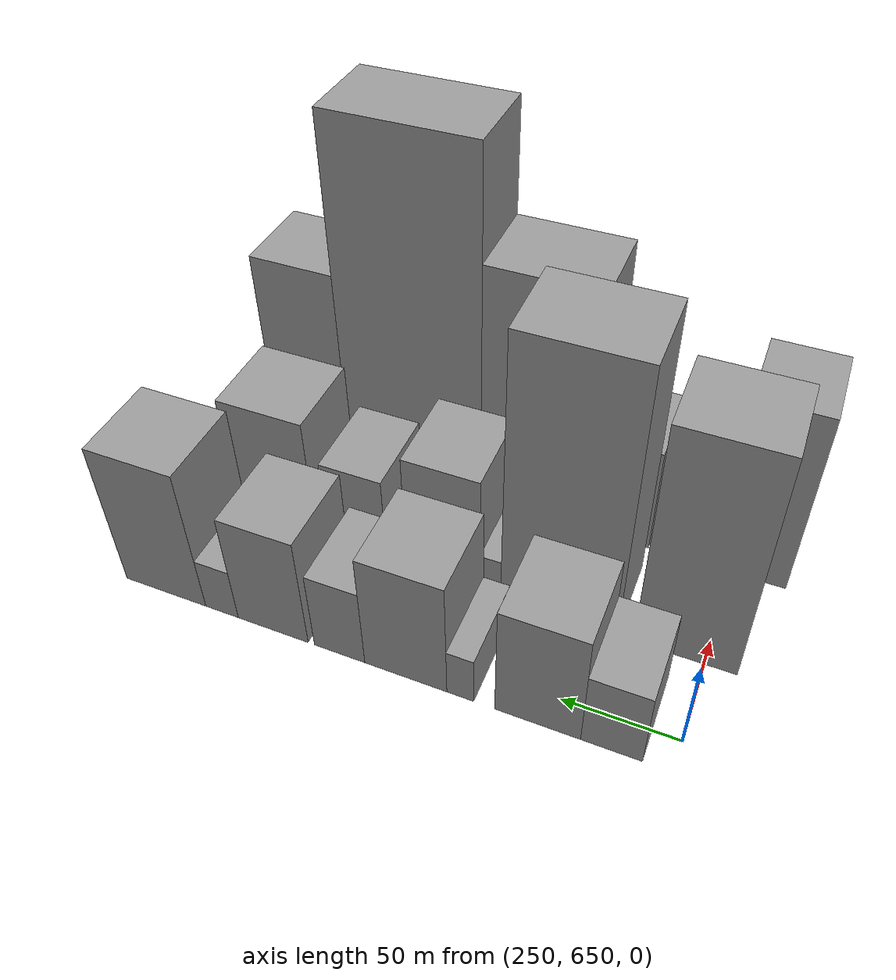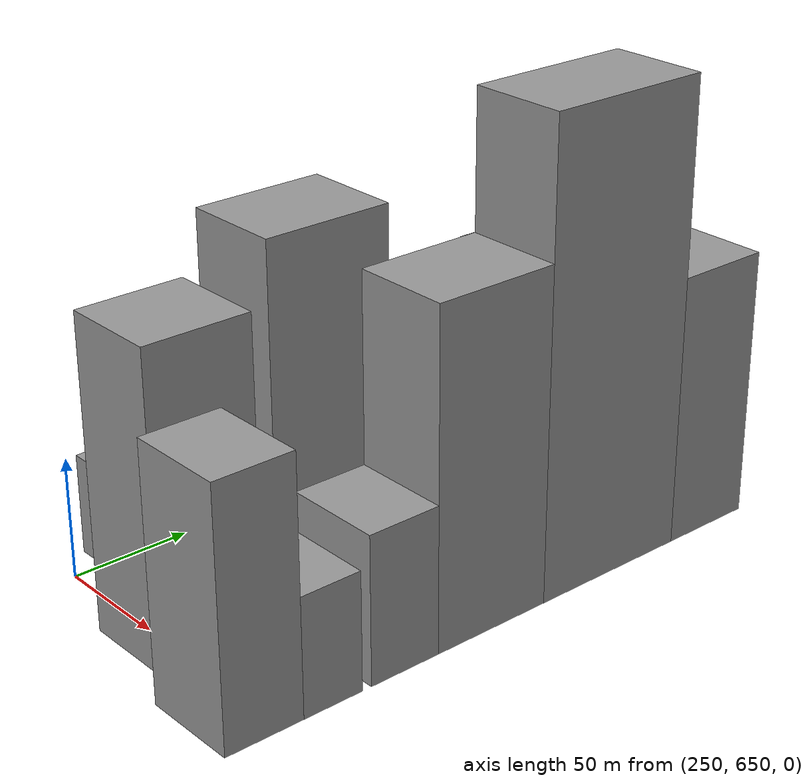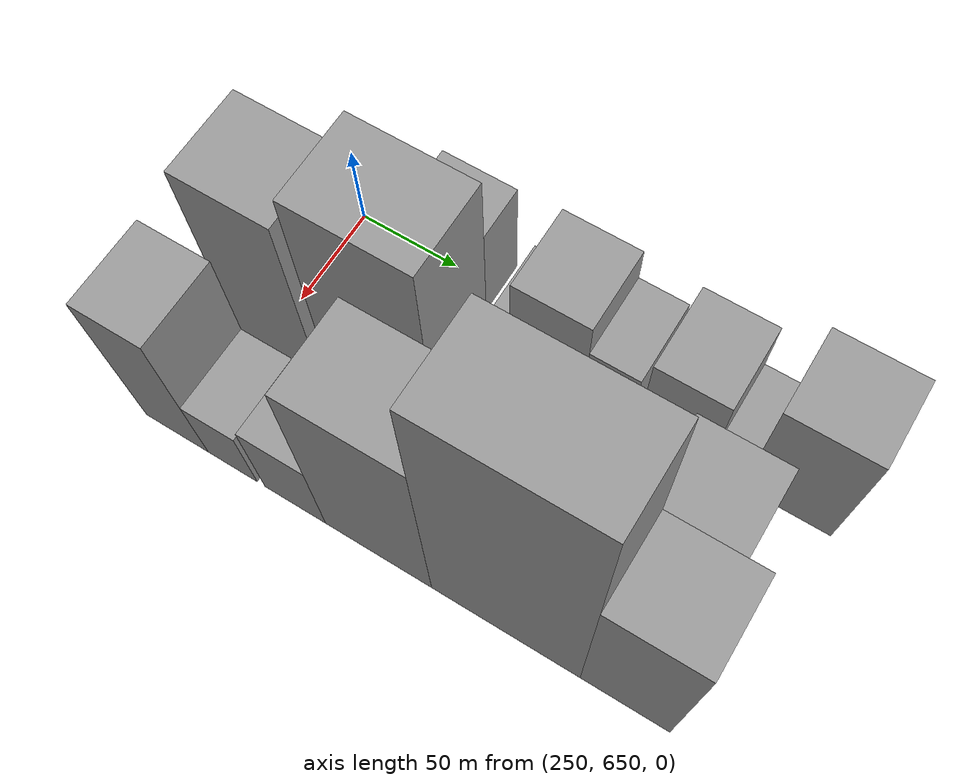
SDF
<sdf version="1.6">
 <world name="default">
  <model name="building_202">
   <static>1</static>
   <pose>256.0000 674.8203 0 0.000000 0.000000 0.000000</pose>
   <link name="link">
    <pose>0 0 21.00 0 0 0</pose>
    <collision name="collision"><geometry><box><size>40.0000 24.8862 42.0000</size></box></geometry></collision>
    <visual name="visual">
     <cast_shadows>0</cast_shadows>
     <geometry><box><size>40.0000 24.8862 42.0000</size></box></geometry>
     <material>
      <script>
       <uri>model://grey_wall/materials/scripts</uri>
       <uri>model://grey_wall/materials/textures</uri>
       <name>vrc/grey_wall</name>
      </script>
     </material>
    </visual>
   </link>
  </model>
  <model name="building_203">
   <static>1</static>
   <pose>256.0000 705.2058 0 0.000000 0.000000 0.000000</pose>
   <link name="link">
    <pose>0 0 31.50 0 0 0</pose>
    <collision name="collision"><geometry><box><size>40.0000 35.8848 63.0000</size></box></geometry></collision>
    <visual name="visual">
     <cast_shadows>0</cast_shadows>
     <geometry><box><size>40.0000 35.8848 63.0000</size></box></geometry>
     <material>
      <script>
       <uri>model://grey_wall/materials/scripts</uri>
       <uri>model://grey_wall/materials/textures</uri>
       <name>vrc/grey_wall</name>
      </script>
     </material>
    </visual>
   </link>
  </model>
  <model name="building_204">
   <static>1</static>
   <pose>256.0000 738.0311 0 0.000000 0.000000 0.000000</pose>
   <link name="link">
    <pose>0 0 13.50 0 0 0</pose>
    <collision name="collision"><geometry><box><size>40.0000 11.7659 27.0000</size></box></geometry></collision>
    <visual name="visual">
     <cast_shadows>0</cast_shadows>
     <geometry><box><size>40.0000 11.7659 27.0000</size></box></geometry>
     <material>
      <script>
       <uri>model://grey_wall/materials/scripts</uri>
       <uri>model://grey_wall/materials/textures</uri>
       <name>vrc/grey_wall</name>
      </script>
     </material>
    </visual>
   </link>
  </model>
  <model name="building_205">
   <static>1</static>
   <pose>256.0000 762.3886 0 0.000000 0.000000 0.000000</pose>
   <link name="link">
    <pose>0 0 33.00 0 0 0</pose>
    <collision name="collision"><geometry><box><size>40.0000 36.9491 66.0000</size></box></geometry></collision>
    <visual name="visual">
     <cast_shadows>0</cast_shadows>
     <geometry><box><size>40.0000 36.9491 66.0000</size></box></geometry>
     <material>
      <script>
       <uri>model://grey_wall/materials/scripts</uri>
       <uri>model://grey_wall/materials/textures</uri>
       <name>vrc/grey_wall</name>
      </script>
     </material>
    </visual>
   </link>
  </model>
  <model name="building_206">
   <static>1</static>
   <pose>256.0000 792.6477 0 0.000000 0.000000 0.000000</pose>
   <link name="link">
    <pose>0 0 22.50 0 0 0</pose>
    <collision name="collision"><geometry><box><size>40.0000 23.5691 45.0000</size></box></geometry></collision>
    <visual name="visual">
     <cast_shadows>0</cast_shadows>
     <geometry><box><size>40.0000 23.5691 45.0000</size></box></geometry>
     <material>
      <script>
       <uri>model://grey_wall/materials/scripts</uri>
       <uri>model://grey_wall/materials/textures</uri>
       <name>vrc/grey_wall</name>
      </script>
     </material>
    </visual>
   </link>
  </model>
  <model name="building_207">
   <static>1</static>
   <pose>256.0000 824.4846 0 0.000000 0.000000 0.000000</pose>
   <link name="link">
    <pose>0 0 31.50 0 0 0</pose>
    <collision name="collision"><geometry><box><size>40.0000 34.1048 63.0000</size></box></geometry></collision>
    <visual name="visual">
     <cast_shadows>0</cast_shadows>
     <geometry><box><size>40.0000 34.1048 63.0000</size></box></geometry>
     <material>
      <script>
       <uri>model://grey_wall/materials/scripts</uri>
       <uri>model://grey_wall/materials/textures</uri>
       <name>vrc/grey_wall</name>
      </script>
     </material>
    </visual>
   </link>
  </model>
  <model name="building_208">
   <static>1</static>
   <pose>256.0000 849.6685 0 0.000000 0.000000 0.000000</pose>
   <link name="link">
    <pose>0 0 15.00 0 0 0</pose>
    <collision name="collision"><geometry><box><size>40.0000 16.2631 30.0000</size></box></geometry></collision>
    <visual name="visual">
     <cast_shadows>0</cast_shadows>
     <geometry><box><size>40.0000 16.2631 30.0000</size></box></geometry>
     <material>
      <script>
       <uri>model://grey_wall/materials/scripts</uri>
       <uri>model://grey_wall/materials/textures</uri>
       <name>vrc/grey_wall</name>
      </script>
     </material>
    </visual>
   </link>
  </model>
  <model name="building_209">
   <static>1</static>
   <pose>256.0000 878.2918 0 0.000000 0.000000 0.000000</pose>
   <link name="link">
    <pose>0 0 40.50 0 0 0</pose>
    <collision name="collision"><geometry><box><size>40.0000 40.9834 81.0000</size></box></geometry></collision>
    <visual name="visual">
     <cast_shadows>0</cast_shadows>
     <geometry><box><size>40.0000 40.9834 81.0000</size></box></geometry>
     <material>
      <script>
       <uri>model://grey_wall/materials/scripts</uri>
       <uri>model://grey_wall/materials/textures</uri>
       <name>vrc/grey_wall</name>
      </script>
     </material>
    </visual>
   </link>
  </model>
  <model name="building_256">
   <static>1</static>
   <pose>308.0000 658.3694 0 0.000000 0.000000 0.000000</pose>
   <link name="link">
    <pose>0 0 63.00 0 0 0</pose>
    <collision name="collision"><geometry><box><size>40.0000 44.0469 126.0000</size></box></geometry></collision>
    <visual name="visual">
     <cast_shadows>0</cast_shadows>
     <geometry><box><size>40.0000 44.0469 126.0000</size></box></geometry>
     <material>
      <script>
       <uri>model://grey_wall/materials/scripts</uri>
       <uri>model://grey_wall/materials/textures</uri>
       <name>vrc/grey_wall</name>
      </script>
     </material>
    </visual>
   </link>
  </model>
  <model name="building_257">
   <static>1</static>
   <pose>308.0000 713.9349 0 0.000000 0.000000 0.000000</pose>
   <link name="link">
    <pose>0 0 75.00 0 0 0</pose>
    <collision name="collision"><geometry><box><size>40.0000 53.0840 150.0000</size></box></geometry></collision>
    <visual name="visual">
     <cast_shadows>0</cast_shadows>
     <geometry><box><size>40.0000 53.0840 150.0000</size></box></geometry>
     <material>
      <script>
       <uri>model://grey_wall/materials/scripts</uri>
       <uri>model://grey_wall/materials/textures</uri>
       <name>vrc/grey_wall</name>
      </script>
     </material>
    </visual>
   </link>
  </model>
  <model name="building_258">
   <static>1</static>
   <pose>308.0000 745.3402 0 0.000000 0.000000 0.000000</pose>
   <link name="link">
    <pose>0 0 12.00 0 0 0</pose>
    <collision name="collision"><geometry><box><size>40.0000 9.7267 24.0000</size></box></geometry></collision>
    <visual name="visual">
     <cast_shadows>0</cast_shadows>
     <geometry><box><size>40.0000 9.7267 24.0000</size></box></geometry>
     <material>
      <script>
       <uri>model://grey_wall/materials/scripts</uri>
       <uri>model://grey_wall/materials/textures</uri>
       <name>vrc/grey_wall</name>
      </script>
     </material>
    </visual>
   </link>
  </model>
  <model name="building_259">
   <static>1</static>
   <pose>308.0000 767.8549 0 0.000000 0.000000 0.000000</pose>
   <link name="link">
    <pose>0 0 34.50 0 0 0</pose>
    <collision name="collision"><geometry><box><size>40.0000 35.3026 69.0000</size></box></geometry></collision>
    <visual name="visual">
     <cast_shadows>0</cast_shadows>
     <geometry><box><size>40.0000 35.3026 69.0000</size></box></geometry>
     <material>
      <script>
       <uri>model://grey_wall/materials/scripts</uri>
       <uri>model://grey_wall/materials/textures</uri>
       <name>vrc/grey_wall</name>
      </script>
     </material>
    </visual>
   </link>
  </model>
  <model name="building_260">
   <static>1</static>
   <pose>308.0000 810.2487 0 0.000000 0.000000 0.000000</pose>
   <link name="link">
    <pose>0 0 25.50 0 0 0</pose>
    <collision name="collision"><geometry><box><size>40.0000 29.4850 51.0000</size></box></geometry></collision>
    <visual name="visual">
     <cast_shadows>0</cast_shadows>
     <geometry><box><size>40.0000 29.4850 51.0000</size></box></geometry>
     <material>
      <script>
       <uri>model://grey_wall/materials/scripts</uri>
       <uri>model://grey_wall/materials/textures</uri>
       <name>vrc/grey_wall</name>
      </script>
     </material>
    </visual>
   </link>
  </model>
  <model name="building_261">
   <static>1</static>
   <pose>308.0000 851.6466 0 0.000000 0.000000 0.000000</pose>
   <link name="link">
    <pose>0 0 36.00 0 0 0</pose>
    <collision name="collision"><geometry><box><size>40.0000 41.3108 72.0000</size></box></geometry></collision>
    <visual name="visual">
     <cast_shadows>0</cast_shadows>
     <geometry><box><size>40.0000 41.3108 72.0000</size></box></geometry>
     <material>
      <script>
       <uri>model://grey_wall/materials/scripts</uri>
       <uri>model://grey_wall/materials/textures</uri>
       <name>vrc/grey_wall</name>
      </script>
     </material>
    </visual>
   </link>
  </model>
  <model name="building_302">
   <static>1</static>
   <pose>360.0000 641.7426 0 0.000000 0.000000 0.000000</pose>
   <link name="link">
    <pose>0 0 51.00 0 0 0</pose>
    <collision name="collision"><geometry><box><size>40.0000 32.7524 102.0000</size></box></geometry></collision>
    <visual name="visual">
     <cast_shadows>0</cast_shadows>
     <geometry><box><size>40.0000 32.7524 102.0000</size></box></geometry>
     <material>
      <script>
       <uri>model://grey_wall/materials/scripts</uri>
       <uri>model://grey_wall/materials/textures</uri>
       <name>vrc/grey_wall</name>
      </script>
     </material>
    </visual>
   </link>
  </model>
  <model name="building_303">
   <static>1</static>
   <pose>360.0000 670.8600 0 0.000000 0.000000 0.000000</pose>
   <link name="link">
    <pose>0 0 24.00 0 0 0</pose>
    <collision name="collision"><geometry><box><size>40.0000 25.4824 48.0000</size></box></geometry></collision>
    <visual name="visual">
     <cast_shadows>0</cast_shadows>
     <geometry><box><size>40.0000 25.4824 48.0000</size></box></geometry>
     <material>
      <script>
       <uri>model://grey_wall/materials/scripts</uri>
       <uri>model://grey_wall/materials/textures</uri>
       <name>vrc/grey_wall</name>
      </script>
     </material>
    </visual>
   </link>
  </model>
  <model name="building_304">
   <static>1</static>
   <pose>360.0000 702.9839 0 0.000000 0.000000 0.000000</pose>
   <link name="link">
    <pose>0 0 30.00 0 0 0</pose>
    <collision name="collision"><geometry><box><size>40.0000 30.7653 60.0000</size></box></geometry></collision>
    <visual name="visual">
     <cast_shadows>0</cast_shadows>
     <geometry><box><size>40.0000 30.7653 60.0000</size></box></geometry>
     <material>
      <script>
       <uri>model://grey_wall/materials/scripts</uri>
       <uri>model://grey_wall/materials/textures</uri>
       <name>vrc/grey_wall</name>
      </script>
     </material>
    </visual>
   </link>
  </model>
  <model name="building_305">
   <static>1</static>
   <pose>360.0000 744.4009 0 0.000000 0.000000 0.000000</pose>
   <link name="link">
    <pose>0 0 67.50 0 0 0</pose>
    <collision name="collision"><geometry><box><size>40.0000 52.0687 135.0000</size></box></geometry></collision>
    <visual name="visual">
     <cast_shadows>0</cast_shadows>
     <geometry><box><size>40.0000 52.0687 135.0000</size></box></geometry>
     <material>
      <script>
       <uri>model://grey_wall/materials/scripts</uri>
       <uri>model://grey_wall/materials/textures</uri>
       <name>vrc/grey_wall</name>
      </script>
     </material>
    </visual>
   </link>
  </model>
  <model name="building_306">
   <static>1</static>
   <pose>360.0000 805.1766 0 0.000000 0.000000 0.000000</pose>
   <link name="link">
    <pose>0 0 94.50 0 0 0</pose>
    <collision name="collision"><geometry><box><size>40.0000 69.4826 189.0000</size></box></geometry></collision>
    <visual name="visual">
     <cast_shadows>0</cast_shadows>
     <geometry><box><size>40.0000 69.4826 189.0000</size></box></geometry>
     <material>
      <script>
       <uri>model://grey_wall/materials/scripts</uri>
       <uri>model://grey_wall/materials/textures</uri>
       <name>vrc/grey_wall</name>
      </script>
     </material>
    </visual>
   </link>
  </model>
  <model name="building_307">
   <static>1</static>
   <pose>360.0000 860.0478 0 0.000000 0.000000 0.000000</pose>
   <link name="link">
    <pose>0 0 55.50 0 0 0</pose>
    <collision name="collision"><geometry><box><size>40.0000 40.2598 111.0000</size></box></geometry></collision>
    <visual name="visual">
     <cast_shadows>0</cast_shadows>
     <geometry><box><size>40.0000 40.2598 111.0000</size></box></geometry>
     <material>
      <script>
       <uri>model://grey_wall/materials/scripts</uri>
       <uri>model://grey_wall/materials/textures</uri>
       <name>vrc/grey_wall</name>
      </script>
     </material>
    </visual>
   </link>
  </model>
 </world>
</sdf>
